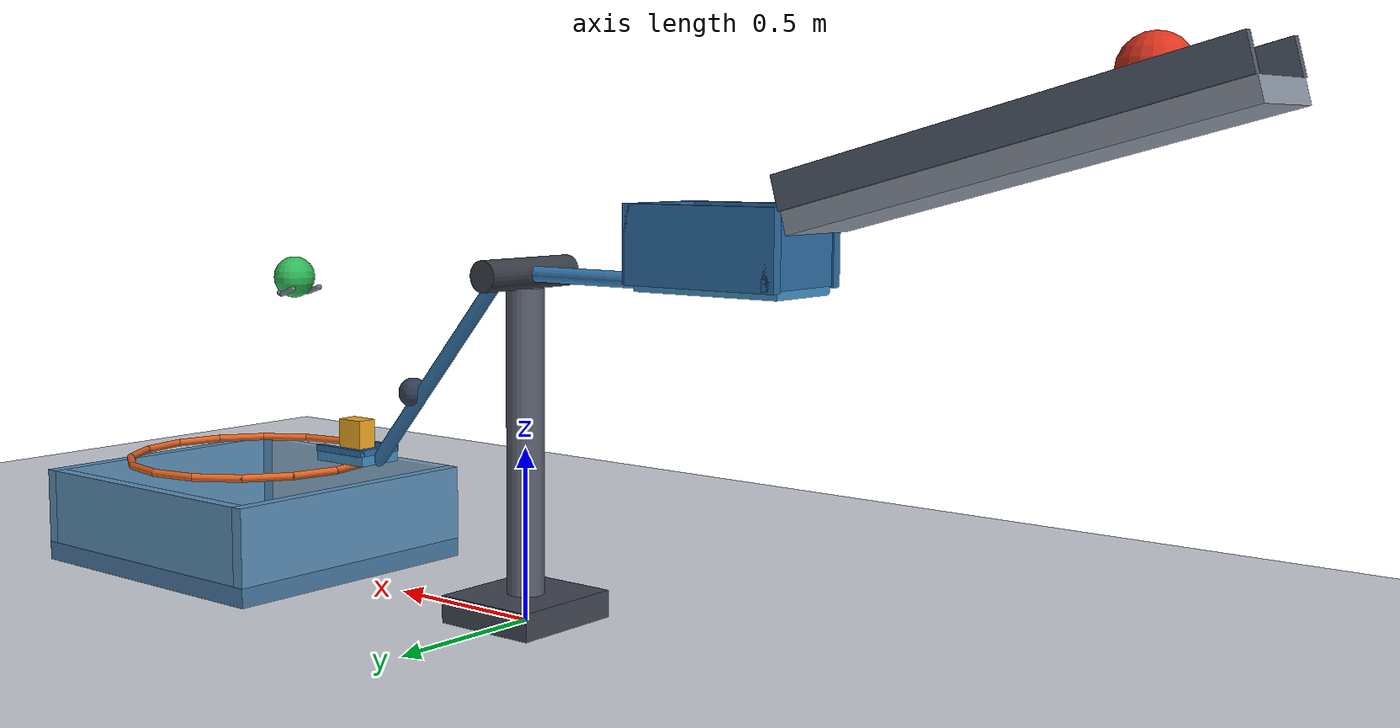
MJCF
<mujoco model="ramp_balance_hoop_cup">
  <compiler angle="radian"/>
  <option timestep="0.002" gravity="0 0 -9.81" integrator="implicitfast" solver="Newton" iterations="100" cone="elliptic"/>
  <size njmax="2000" nconmax="400"/>
  <visual>
    <global azimuth="125" elevation="-20"/>
  </visual>

  <worldbody>
    <light name="overhead_light" pos="-0.5 -2 5" dir="0.1 0.3 -1" diffuse="0.9 0.9 0.9"/>
    <camera name="overview" pos="0 -5 2.7" xyaxes="1 0 0 0 0.32 0.947"/>

    <geom name="floor" type="plane" size="5 4 0.1" friction="0.9 0.02 0.005" rgba="0.82 0.84 0.87 1"/>

    <!-- The ball starts exactly 0.9 m along the ramp from its downhill end. -->
    <body name="ramp" pos="-1.5027 0 1.32" quat="0.991444861 0 0.130526192 0">
      <geom name="ramp_deck" type="box" size="0.575 0.14 0.03" friction="0.7 0.005 0.0002" rgba="0.55 0.59 0.65 1"/>
      <geom name="ramp_near_rail" type="box" pos="0 -0.14 0.075" size="0.575 0.012 0.045" rgba="0.32 0.36 0.43 1"/>
      <geom name="ramp_far_rail" type="box" pos="0 0.14 0.075" size="0.575 0.012 0.045" rgba="0.32 0.36 0.43 1"/>
    </body>

    <body name="ball1" pos="-1.786862 0 1.515198">
      <freejoint name="ball1_free"/>
      <geom name="ball1_sphere" type="sphere" size="0.085" mass="2" condim="6" friction="0.7 0.005 0.0002" solref="0.008 1" rgba="0.88 0.21 0.12 1"/>
    </body>

    <body name="fulcrum">
      <geom name="fulcrum_base" type="box" pos="0 0 0.04" size="0.16 0.18 0.04" contype="0" conaffinity="0" rgba="0.25 0.28 0.33 1"/>
      <geom name="fulcrum_post" type="cylinder" pos="0 0 0.50" size="0.055 0.46" contype="0" conaffinity="0" rgba="0.35 0.38 0.43 1"/>
      <geom name="fulcrum_axle" type="cylinder" pos="0 0 1" quat="0.707106781 0.707106781 0 0" size="0.045 0.18" contype="0" conaffinity="0" rgba="0.22 0.24 0.28 1"/>
    </body>

    <!-- The right arm joins the inner edge of the tray, clear of the block. -->
    <body name="balance" pos="0 0 1">
      <joint name="balance_hinge" type="hinge" axis="0 1 0" limited="true" range="-0.35 0" damping="0.03" frictionloss="0.005" armature="0.005" solreflimit="0.004 1" solimplimit="0.99 0.99 0.001"/>

      <geom name="balance_left_arm" type="capsule" fromto="-0.74 0 0 0.15 0 0" size="0.022" mass="0.14" rgba="0.21 0.48 0.70 1"/>
      <geom name="balance_right_arm" type="capsule" fromto="0.10 0 -0.015 0.60 0 -0.60" size="0.022" mass="0.15" rgba="0.21 0.48 0.70 1"/>

      <geom name="balance_recess_floor" type="box" pos="-0.70 0 0" size="0.22 0.12 0.018" mass="0.12" friction="0.7 0.01 0.001" rgba="0.25 0.57 0.78 1"/>
      <geom name="balance_recess_back" type="box" pos="-0.91 0 0.09" size="0.015 0.15 0.085" mass="0.015" solref="0.008 1" rgba="0.18 0.43 0.65 1"/>
      <geom name="balance_recess_front" type="box" pos="-0.48 0 0.105" size="0.015 0.15 0.105" mass="0.015" solref="0.008 1" rgba="0.18 0.43 0.65 1"/>
      <geom name="balance_recess_near" type="box" pos="-0.70 -0.135 0.105" size="0.23 0.015 0.105" mass="0.015" rgba="0.18 0.43 0.65 1"/>
      <geom name="balance_recess_far" type="box" pos="-0.70 0.135 0.105" size="0.23 0.015 0.105" mass="0.015" rgba="0.18 0.43 0.65 1"/>

      <geom name="balance_striker_tray" type="box" pos="0.70 0 -0.60" size="0.10 0.075 0.015" mass="0.04" friction="1.2 0.01 0.001" solref="0.006 1" rgba="0.25 0.57 0.78 1"/>
      <geom name="balance_tray_inner_lip" type="box" pos="0.61 0 -0.575" size="0.01 0.075 0.01" mass="0.005" rgba="0.18 0.43 0.65 1"/>
      <geom name="balance_tray_near_lip" type="box" pos="0.70 -0.072 -0.575" size="0.10 0.008 0.01" mass="0.005" rgba="0.18 0.43 0.65 1"/>
      <geom name="balance_tray_far_lip" type="box" pos="0.70 0.072 -0.575" size="0.10 0.008 0.01" mass="0.005" rgba="0.18 0.43 0.65 1"/>

      <geom name="balance_bias_weight" type="sphere" pos="0.45 0 -0.38" size="0.045" mass="0.30" rgba="0.18 0.24 0.32 1"/>
    </body>

    <body name="block" pos="0.70 0 0.465">
      <freejoint name="block_free"/>
      <geom name="block_striker" type="box" size="0.045 0.032 0.05" mass="0.12" friction="1.2 0.01 0.001" solref="0.006 1" rgba="0.95 0.67 0.13 1"/>
    </body>

    <!-- The short right tips retain the resting ball without recapturing its outward strike. -->
    <body name="ball2_support" pos="0.98 0 0.892">
      <geom name="ball2_support_near_left" type="capsule" fromto="-0.055 -0.055 0.018 0 -0.055 0" size="0.008" friction="0.4 0.005 0.0002" rgba="0.48 0.51 0.56 1"/>
      <geom name="ball2_support_near_right" type="capsule" fromto="0 -0.055 0 0.010 -0.055 0.003272727" size="0.008" friction="0.4 0.005 0.0002" rgba="0.48 0.51 0.56 1"/>
      <geom name="ball2_support_far_left" type="capsule" fromto="-0.055 0.055 0.018 0 0.055 0" size="0.008" friction="0.4 0.005 0.0002" rgba="0.48 0.51 0.56 1"/>
      <geom name="ball2_support_far_right" type="capsule" fromto="0 0.055 0 0.010 0.055 0.003272727" size="0.008" friction="0.4 0.005 0.0002" rgba="0.48 0.51 0.56 1"/>
    </body>

    <body name="ball2" pos="0.9805 0 0.9424">
      <freejoint name="ball2_free"/>
      <geom name="ball2_sphere" type="sphere" size="0.065" mass="0.25" condim="6" friction="0.8 0.01 0.004" solref="0.012 1" rgba="0.19 0.73 0.34 1"/>
    </body>

    <!-- Below the tray's swept volume and above the cup rim. -->
    <body name="hoop" pos="1.20 0 0.34">
      <geom name="hoop_segment_01" type="capsule" fromto="0.4 0 0 0.369552 0.153073 0" size="0.012" rgba="0.88 0.39 0.12 1"/>
      <geom name="hoop_segment_02" type="capsule" fromto="0.369552 0.153073 0 0.282843 0.282843 0" size="0.012" rgba="0.88 0.39 0.12 1"/>
      <geom name="hoop_segment_03" type="capsule" fromto="0.282843 0.282843 0 0.153073 0.369552 0" size="0.012" rgba="0.88 0.39 0.12 1"/>
      <geom name="hoop_segment_04" type="capsule" fromto="0.153073 0.369552 0 0 0.4 0" size="0.012" rgba="0.88 0.39 0.12 1"/>
      <geom name="hoop_segment_05" type="capsule" fromto="0 0.4 0 -0.153073 0.369552 0" size="0.012" rgba="0.88 0.39 0.12 1"/>
      <geom name="hoop_segment_06" type="capsule" fromto="-0.153073 0.369552 0 -0.282843 0.282843 0" size="0.012" rgba="0.88 0.39 0.12 1"/>
      <geom name="hoop_segment_07" type="capsule" fromto="-0.282843 0.282843 0 -0.369552 0.153073 0" size="0.012" rgba="0.88 0.39 0.12 1"/>
      <geom name="hoop_segment_08" type="capsule" fromto="-0.369552 0.153073 0 -0.4 0 0" size="0.012" rgba="0.88 0.39 0.12 1"/>
      <geom name="hoop_segment_09" type="capsule" fromto="-0.4 0 0 -0.369552 -0.153073 0" size="0.012" rgba="0.88 0.39 0.12 1"/>
      <geom name="hoop_segment_10" type="capsule" fromto="-0.369552 -0.153073 0 -0.282843 -0.282843 0" size="0.012" rgba="0.88 0.39 0.12 1"/>
      <geom name="hoop_segment_11" type="capsule" fromto="-0.282843 -0.282843 0 -0.153073 -0.369552 0" size="0.012" rgba="0.88 0.39 0.12 1"/>
      <geom name="hoop_segment_12" type="capsule" fromto="-0.153073 -0.369552 0 0 -0.4 0" size="0.012" rgba="0.88 0.39 0.12 1"/>
      <geom name="hoop_segment_13" type="capsule" fromto="0 -0.4 0 0.153073 -0.369552 0" size="0.012" rgba="0.88 0.39 0.12 1"/>
      <geom name="hoop_segment_14" type="capsule" fromto="0.153073 -0.369552 0 0.282843 -0.282843 0" size="0.012" rgba="0.88 0.39 0.12 1"/>
      <geom name="hoop_segment_15" type="capsule" fromto="0.282843 -0.282843 0 0.369552 -0.153073 0" size="0.012" rgba="0.88 0.39 0.12 1"/>
      <geom name="hoop_segment_16" type="capsule" fromto="0.369552 -0.153073 0 0.4 0 0" size="0.012" rgba="0.88 0.39 0.12 1"/>
    </body>

    <body name="cup" pos="1.20 0 0.03">
      <geom name="cup_bottom" type="box" size="0.49 0.46 0.03" condim="6" friction="0.9 0.03 0.01" solref="0.015 1" rgba="0.29 0.48 0.65 1"/>
      <geom name="cup_left_wall" type="box" pos="-0.47 0 0.15" size="0.02 0.46 0.12" condim="6" friction="0.9 0.03 0.01" solref="0.015 1" rgba="0.36 0.57 0.73 1"/>
      <geom name="cup_right_wall" type="box" pos="0.47 0 0.15" size="0.02 0.46 0.12" condim="6" friction="0.9 0.03 0.01" solref="0.015 1" rgba="0.36 0.57 0.73 1"/>
      <geom name="cup_near_wall" type="box" pos="0 -0.44 0.15" size="0.45 0.02 0.12" condim="6" friction="0.9 0.03 0.01" solref="0.015 1" rgba="0.36 0.57 0.73 0.65"/>
      <geom name="cup_far_wall" type="box" pos="0 0.44 0.15" size="0.45 0.02 0.12" condim="6" friction="0.9 0.03 0.01" solref="0.015 1" rgba="0.36 0.57 0.73 1"/>
    </body>
  </worldbody>

  <keyframe>
    <key name="start"/>
  </keyframe>
</mujoco>
